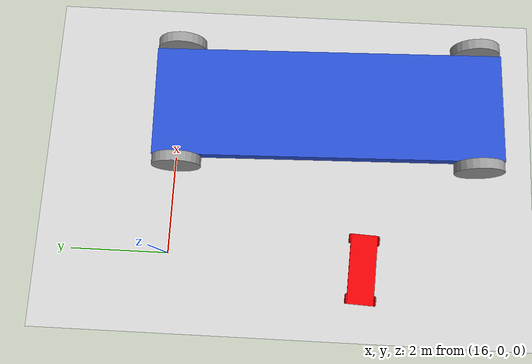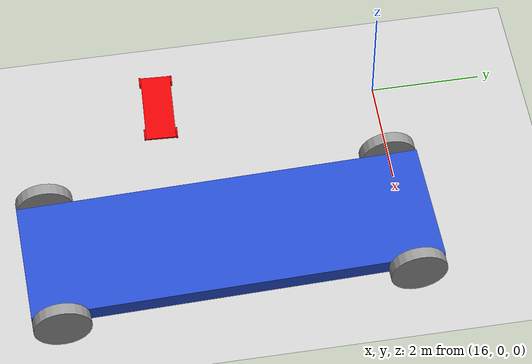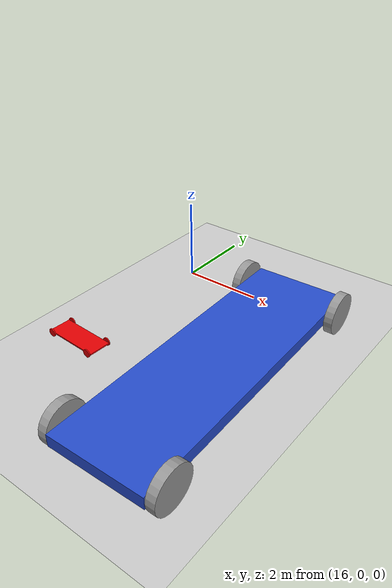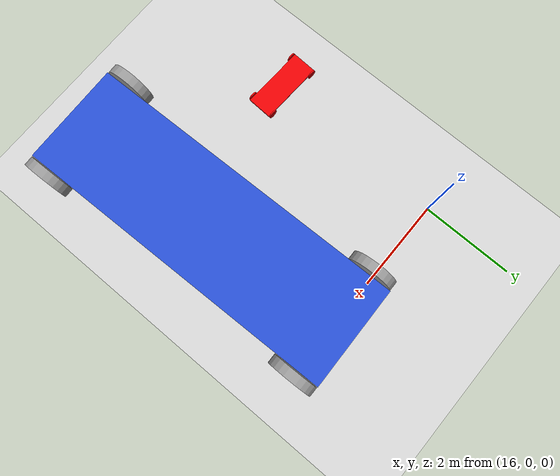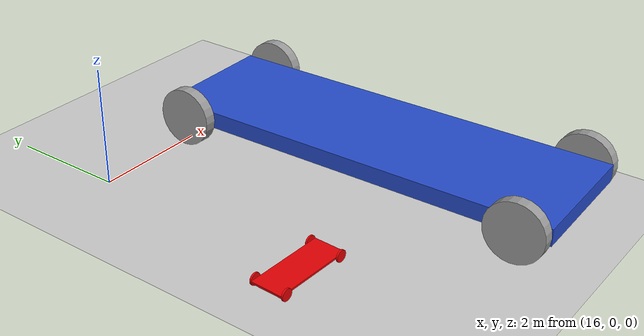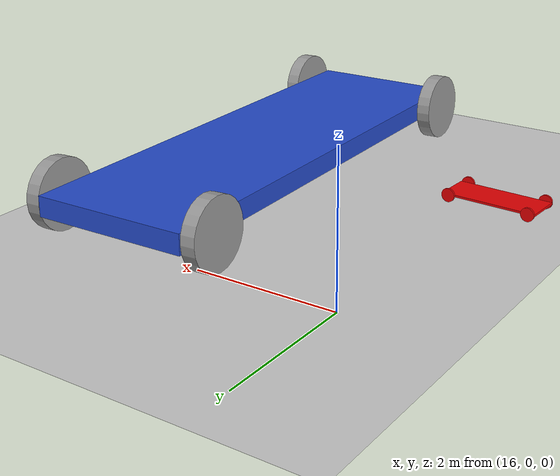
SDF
<sdf version="1.6">
 <world name="default">
  <model name="ground_plane">
   <static>1</static>
   <link name="link">
    <collision name="collision">
     <geometry><plane><normal>0 0 1</normal><size>100 100</size></plane></geometry>
     <surface><friction><ode><mu>100</mu><mu2>50</mu2></ode></friction></surface>
    </collision>
    <visual name="visual">
     <cast_shadows>0</cast_shadows>
     <geometry><plane><normal>0 0 1</normal><size>100 100</size></plane></geometry>
     <material>
      <script><uri>file://media/materials/scripts/gazebo.material</uri><name>Gazebo/Grey</name></script>
     </material>
    </visual>
   </link>
  </model>
  <model name="big_cart_0">
   <link name="link_0">
    <inertial>
     <mass>4.6866</mass>
     <inertia><ixx>2.0216</ixx><ixy>0</ixy><ixz>0</ixz><iyy>20.0752</iyy><iyz>0</iyz><izz>22.0311</izz></inertia>
    </inertial>
    <visual name="visual">
     <geometry><box><size>7.16364 2.25661 0.28988</size></box></geometry>
     <material>
      <lighting>1</lighting>
      <script><uri>file://media/materials/scripts/gazebo.material</uri><name>Gazebo/Blue</name></script>
      <ambient>0.9 0.002 0 1</ambient>
      <diffuse>0.9 0.002 0.01 0.9</diffuse>
      <specular>0.01 0.01 0.01 1</specular>
      <emissive>0 0 0 1</emissive>
      <shader type="vertex"><normal_map>__default__</normal_map></shader>
     </material>
    </visual>
    <visual name="ModelPreview_0::link_0::visual_1">
     <geometry><box><size>7.16364 2.25661 0.28988</size></box></geometry>
     <material>
      <lighting>1</lighting>
      <script><uri>file://media/materials/scripts/gazebo.material</uri><name>Gazebo/Blue</name></script>
      <ambient>0.09 0.09 0.6 0.7</ambient>
      <diffuse>0.9 0.9 0.9 0.9</diffuse>
      <specular>0.01 0.01 0.01 1</specular>
      <emissive>0 0 0 1</emissive>
      <shader type="vertex"><normal_map>__default__</normal_map></shader>
     </material>
    </visual>
    <collision name="collision">
     <geometry><box><size>7.16364 2.25661 0.28988</size></box></geometry>
     <surface>
      <friction>
       <ode><mu>1</mu><mu2>1</mu2><fdir1>0 0 0</fdir1><slip1>0</slip1><slip2>0</slip2></ode>
       <torsional>
        <coefficient>1</coefficient>
        <patch_radius>0</patch_radius>
        <surface_radius>0</surface_radius>
        <use_patch_radius>1</use_patch_radius>
        <ode><slip>0</slip></ode>
       </torsional>
      </friction>
      <bounce><restitution_coefficient>0</restitution_coefficient><threshold>1e+06</threshold></bounce>
      <contact>
       <collide_without_contact>0</collide_without_contact>
       <collide_without_contact_bitmask>1</collide_without_contact_bitmask>
       <collide_bitmask>1</collide_bitmask>
       <ode>
        <soft_cfm>0</soft_cfm>
        <soft_erp>0.2</soft_erp>
        <kp>1e+13</kp>
        <kd>1</kd>
        <max_vel>0.01</max_vel>
        <min_depth>0</min_depth>
       </ode>
       <bullet>
        <split_impulse>1</split_impulse>
        <split_impulse_penetration_threshold>-0.01</split_impulse_penetration_threshold>
        <soft_cfm>0</soft_cfm>
        <soft_erp>0.2</soft_erp>
        <kp>1e+13</kp>
        <kd>1</kd>
       </bullet>
      </contact>
     </surface>
    </collision>
   </link>
   <link name="link_1_clone_clone_clone">
    <pose>-3.08182 1.24423 0 -1.59621 0 0</pose>
    <inertial>
     <mass>0.206504</mass>
     <inertia>
      <ixx>0.0136404</ixx>
      <ixy>0</ixy>
      <ixz>0</ixz>
      <iyy>0.0136404</iyy>
      <iyz>0</iyz>
      <izz>0.0258131</izz>
     </inertia>
    </inertial>
    <visual name="visual">
     <geometry><cylinder><radius>0.5</radius><length>0.206502</length></cylinder></geometry>
     <material>
      <lighting>1</lighting>
      <script><uri>file://media/materials/scripts/gazebo.material</uri><name>Gazebo/Grey</name></script>
      <ambient>0.5 0.5 0.5 1</ambient>
      <diffuse>0.9 0.9 0.9 1</diffuse>
      <specular>0.01 0.01 0.01 1</specular>
      <emissive>0 0 0 1</emissive>
      <shader type="vertex"><normal_map>__default__</normal_map></shader>
     </material>
    </visual>
    <collision name="collision">
     <geometry><cylinder><radius>0.5</radius><length>0.206502</length></cylinder></geometry>
     <surface>
      <friction>
       <ode><mu>1</mu><mu2>1</mu2><fdir1>0 0 0</fdir1><slip1>0</slip1><slip2>0</slip2></ode>
       <torsional>
        <coefficient>1</coefficient>
        <patch_radius>0</patch_radius>
        <surface_radius>0</surface_radius>
        <use_patch_radius>1</use_patch_radius>
        <ode><slip>0</slip></ode>
       </torsional>
      </friction>
      <bounce><restitution_coefficient>0</restitution_coefficient><threshold>1e+06</threshold></bounce>
      <contact>
       <collide_without_contact>0</collide_without_contact>
       <collide_without_contact_bitmask>1</collide_without_contact_bitmask>
       <collide_bitmask>1</collide_bitmask>
       <ode>
        <soft_cfm>0</soft_cfm>
        <soft_erp>0.2</soft_erp>
        <kp>1e+13</kp>
        <kd>1</kd>
        <max_vel>0.01</max_vel>
        <min_depth>0</min_depth>
       </ode>
       <bullet>
        <split_impulse>1</split_impulse>
        <split_impulse_penetration_threshold>-0.01</split_impulse_penetration_threshold>
        <soft_cfm>0</soft_cfm>
        <soft_erp>0.2</soft_erp>
        <kp>1e+13</kp>
        <kd>1</kd>
       </bullet>
      </contact>
     </surface>
    </collision>
   </link>
   <link name="link_1_clone_clone_clone_1">
    <pose>3.08182 -1.24423 0 -1.59621 0 0</pose>
    <inertial>
     <mass>0.206504</mass>
     <inertia>
      <ixx>0.0136404</ixx>
      <ixy>0</ixy>
      <ixz>0</ixz>
      <iyy>0.0136404</iyy>
      <iyz>0</iyz>
      <izz>0.0258131</izz>
     </inertia>
    </inertial>
    <visual name="visual">
     <geometry><cylinder><radius>0.5</radius><length>0.206502</length></cylinder></geometry>
     <material>
      <lighting>1</lighting>
      <script><uri>file://media/materials/scripts/gazebo.material</uri><name>Gazebo/Grey</name></script>
      <ambient>0.5 0.5 0.5 1</ambient>
      <diffuse>0.9 0.9 0.9 1</diffuse>
      <specular>0.01 0.01 0.01 1</specular>
      <emissive>0 0 0 1</emissive>
      <shader type="vertex"><normal_map>__default__</normal_map></shader>
     </material>
    </visual>
    <collision name="collision">
     <geometry><cylinder><radius>0.5</radius><length>0.206502</length></cylinder></geometry>
     <surface>
      <friction>
       <ode><mu>1</mu><mu2>1</mu2><fdir1>0 0 0</fdir1><slip1>0</slip1><slip2>0</slip2></ode>
       <torsional>
        <coefficient>1</coefficient>
        <patch_radius>0</patch_radius>
        <surface_radius>0</surface_radius>
        <use_patch_radius>1</use_patch_radius>
        <ode><slip>0</slip></ode>
       </torsional>
      </friction>
      <bounce><restitution_coefficient>0</restitution_coefficient><threshold>1e+06</threshold></bounce>
      <contact>
       <collide_without_contact>0</collide_without_contact>
       <collide_without_contact_bitmask>1</collide_without_contact_bitmask>
       <collide_bitmask>1</collide_bitmask>
       <ode>
        <soft_cfm>0</soft_cfm>
        <soft_erp>0.2</soft_erp>
        <kp>1e+13</kp>
        <kd>1</kd>
        <max_vel>0.01</max_vel>
        <min_depth>0</min_depth>
       </ode>
       <bullet>
        <split_impulse>1</split_impulse>
        <split_impulse_penetration_threshold>-0.01</split_impulse_penetration_threshold>
        <soft_cfm>0</soft_cfm>
        <soft_erp>0.2</soft_erp>
        <kp>1e+13</kp>
        <kd>1</kd>
       </bullet>
      </contact>
     </surface>
    </collision>
   </link>
   <link name="link_1_clone_clone_clone_1_clone">
    <pose>3.08182 1.24423 0 -1.59621 0 0</pose>
    <inertial>
     <mass>0.206504</mass>
     <inertia>
      <ixx>0.0136404</ixx>
      <ixy>0</ixy>
      <ixz>0</ixz>
      <iyy>0.0136404</iyy>
      <iyz>0</iyz>
      <izz>0.0258131</izz>
     </inertia>
    </inertial>
    <visual name="visual">
     <geometry><cylinder><radius>0.5</radius><length>0.206502</length></cylinder></geometry>
     <material>
      <lighting>1</lighting>
      <script><uri>file://media/materials/scripts/gazebo.material</uri><name>Gazebo/Grey</name></script>
      <ambient>0.5 0.5 0.5 1</ambient>
      <diffuse>0.9 0.9 0.9 1</diffuse>
      <specular>0.01 0.01 0.01 1</specular>
      <emissive>0 0 0 1</emissive>
      <shader type="vertex"><normal_map>__default__</normal_map></shader>
     </material>
    </visual>
    <collision name="collision">
     <geometry><cylinder><radius>0.5</radius><length>0.206502</length></cylinder></geometry>
     <surface>
      <friction>
       <ode><mu>1</mu><mu2>1</mu2><fdir1>0 0 0</fdir1><slip1>0</slip1><slip2>0</slip2></ode>
       <torsional>
        <coefficient>1</coefficient>
        <patch_radius>0</patch_radius>
        <surface_radius>0</surface_radius>
        <use_patch_radius>1</use_patch_radius>
        <ode><slip>0</slip></ode>
       </torsional>
      </friction>
      <bounce><restitution_coefficient>0</restitution_coefficient><threshold>1e+06</threshold></bounce>
      <contact>
       <collide_without_contact>0</collide_without_contact>
       <collide_without_contact_bitmask>1</collide_without_contact_bitmask>
       <collide_bitmask>1</collide_bitmask>
       <ode>
        <soft_cfm>0</soft_cfm>
        <soft_erp>0.2</soft_erp>
        <kp>1e+13</kp>
        <kd>1</kd>
        <max_vel>0.01</max_vel>
        <min_depth>0</min_depth>
       </ode>
       <bullet>
        <split_impulse>1</split_impulse>
        <split_impulse_penetration_threshold>-0.01</split_impulse_penetration_threshold>
        <soft_cfm>0</soft_cfm>
        <soft_erp>0.2</soft_erp>
        <kp>1e+13</kp>
        <kd>1</kd>
       </bullet>
      </contact>
     </surface>
    </collision>
   </link>
   <link name="link_1_clone_clone_clone_clone">
    <pose>-3.08182 -1.24423 0 -1.59621 0 0</pose>
    <inertial>
     <mass>0.206504</mass>
     <inertia>
      <ixx>0.0136404</ixx>
      <ixy>0</ixy>
      <ixz>0</ixz>
      <iyy>0.0136404</iyy>
      <iyz>0</iyz>
      <izz>0.0258131</izz>
     </inertia>
    </inertial>
    <visual name="visual">
     <geometry><cylinder><radius>0.5</radius><length>0.206502</length></cylinder></geometry>
     <material>
      <lighting>1</lighting>
      <script><uri>file://media/materials/scripts/gazebo.material</uri><name>Gazebo/Grey</name></script>
      <ambient>0.5 0.5 0.5 1</ambient>
      <diffuse>0.9 0.9 0.9 1</diffuse>
      <specular>0.01 0.01 0.01 1</specular>
      <emissive>0 0 0 1</emissive>
      <shader type="vertex"><normal_map>__default__</normal_map></shader>
     </material>
    </visual>
    <collision name="collision">
     <geometry><cylinder><radius>0.5</radius><length>0.206502</length></cylinder></geometry>
     <surface>
      <friction>
       <ode><mu>1</mu><mu2>1</mu2><fdir1>0 0 0</fdir1><slip1>0</slip1><slip2>0</slip2></ode>
       <torsional>
        <coefficient>1</coefficient>
        <patch_radius>0</patch_radius>
        <surface_radius>0</surface_radius>
        <use_patch_radius>1</use_patch_radius>
        <ode><slip>0</slip></ode>
       </torsional>
      </friction>
      <bounce><restitution_coefficient>0</restitution_coefficient><threshold>1e+06</threshold></bounce>
      <contact>
       <collide_without_contact>0</collide_without_contact>
       <collide_without_contact_bitmask>1</collide_without_contact_bitmask>
       <collide_bitmask>1</collide_bitmask>
       <ode>
        <soft_cfm>0</soft_cfm>
        <soft_erp>0.2</soft_erp>
        <kp>1e+13</kp>
        <kd>1</kd>
        <max_vel>0.01</max_vel>
        <min_depth>0</min_depth>
       </ode>
       <bullet>
        <split_impulse>1</split_impulse>
        <split_impulse_penetration_threshold>-0.01</split_impulse_penetration_threshold>
        <soft_cfm>0</soft_cfm>
        <soft_erp>0.2</soft_erp>
        <kp>1e+13</kp>
        <kd>1</kd>
       </bullet>
      </contact>
     </surface>
    </collision>
   </link>
   <joint name="link_0_JOINT_4" type="revolute">
    <parent>link_0</parent>
    <child>link_1_clone_clone_clone</child>
    <axis>
     <xyz>0 0 1</xyz>
     <use_parent_model_frame>0</use_parent_model_frame>
     <limit>
      <lower>-1.79769e+308</lower>
      <upper>1.79769e+308</upper>
      <effort>-1</effort>
      <velocity>-1</velocity>
     </limit>
     <dynamics>
      <spring_reference>0</spring_reference>
      <spring_stiffness>0</spring_stiffness>
      <damping>0</damping>
     </dynamics>
    </axis>
    <physics>
     <ode><limit><cfm>0</cfm><erp>0.2</erp></limit><suspension><cfm>0</cfm><erp>0.2</erp></suspension></ode>
    </physics>
   </joint>
   <joint name="link_0_JOINT_6" type="revolute">
    <parent>link_0</parent>
    <child>link_1_clone_clone_clone_1</child>
    <axis>
     <xyz>0 0 1</xyz>
     <use_parent_model_frame>0</use_parent_model_frame>
     <limit>
      <lower>-1.79769e+308</lower>
      <upper>1.79769e+308</upper>
      <effort>-1</effort>
      <velocity>-1</velocity>
     </limit>
     <dynamics>
      <spring_reference>0</spring_reference>
      <spring_stiffness>0</spring_stiffness>
      <damping>0</damping>
     </dynamics>
    </axis>
    <physics>
     <ode><limit><cfm>0</cfm><erp>0.2</erp></limit><suspension><cfm>0</cfm><erp>0.2</erp></suspension></ode>
    </physics>
   </joint>
   <joint name="link_0_JOINT_7" type="revolute">
    <parent>link_0</parent>
    <child>link_1_clone_clone_clone_1_clone</child>
    <axis>
     <xyz>0 0 1</xyz>
     <use_parent_model_frame>0</use_parent_model_frame>
     <limit>
      <lower>-1.79769e+308</lower>
      <upper>1.79769e+308</upper>
      <effort>-1</effort>
      <velocity>-1</velocity>
     </limit>
     <dynamics>
      <spring_reference>0</spring_reference>
      <spring_stiffness>0</spring_stiffness>
      <damping>0</damping>
     </dynamics>
    </axis>
    <physics>
     <ode><limit><cfm>0</cfm><erp>0.2</erp></limit><suspension><cfm>0</cfm><erp>0.2</erp></suspension></ode>
    </physics>
   </joint>
   <joint name="link_0_JOINT_8" type="revolute">
    <parent>link_0</parent>
    <child>link_1_clone_clone_clone_clone</child>
    <axis>
     <xyz>0 0 1</xyz>
     <use_parent_model_frame>0</use_parent_model_frame>
     <limit>
      <lower>-1.79769e+308</lower>
      <upper>1.79769e+308</upper>
      <effort>-1</effort>
      <velocity>-1</velocity>
     </limit>
     <dynamics>
      <spring_reference>0</spring_reference>
      <spring_stiffness>0</spring_stiffness>
      <damping>0</damping>
     </dynamics>
    </axis>
    <physics>
     <ode><limit><cfm>0</cfm><erp>0.2</erp></limit><suspension><cfm>0</cfm><erp>0.2</erp></suspension></ode>
    </physics>
   </joint>
   <static>0</static>
   <pose>19.1572 -3.14724 0.502458 -3e-06 -0 -1.54506</pose>
  </model>
  <model name="cart_1">
   <link name="link_0">
    <pose>0.002043 -1e-06 0 0 -0 0</pose>
    <inertial>
     <mass>0.0253075</mass>
     <inertia>
      <ixx>0.00062948</ixx>
      <ixy>0</ixy>
      <ixz>0</ixz>
      <iyy>0.00421325</iyy>
      <iyz>0</iyz>
      <izz>0.00483818</izz>
     </inertia>
    </inertial>
    <visual name="visual">
     <geometry><box><size>1.41306 0.545344 0.032853</size></box></geometry>
     <material>
      <lighting>1</lighting>
      <script><uri>file://media/materials/scripts/gazebo.material</uri><name>Gazebo/Grey</name></script>
      <ambient>0.9 0.002 0 1</ambient>
      <diffuse>0.9 0.002 0.01 0.9</diffuse>
      <specular>0.01 0.01 0.01 1</specular>
      <emissive>0 0 0 1</emissive>
      <shader type="vertex"><normal_map>__default__</normal_map></shader>
     </material>
    </visual>
    <collision name="collision">
     <geometry><box><size>1.41306 0.545344 0.032853</size></box></geometry>
     <surface>
      <friction>
       <ode><mu>1</mu><mu2>1</mu2><fdir1>0 0 0</fdir1><slip1>0</slip1><slip2>0</slip2></ode>
       <torsional>
        <coefficient>1</coefficient>
        <patch_radius>0</patch_radius>
        <surface_radius>0</surface_radius>
        <use_patch_radius>1</use_patch_radius>
        <ode><slip>0</slip></ode>
       </torsional>
      </friction>
      <bounce><restitution_coefficient>0</restitution_coefficient><threshold>1e+06</threshold></bounce>
      <contact>
       <collide_without_contact>0</collide_without_contact>
       <collide_without_contact_bitmask>1</collide_without_contact_bitmask>
       <collide_bitmask>1</collide_bitmask>
       <ode>
        <soft_cfm>0</soft_cfm>
        <soft_erp>0.2</soft_erp>
        <kp>1e+13</kp>
        <kd>1</kd>
        <max_vel>0.01</max_vel>
        <min_depth>0</min_depth>
       </ode>
       <bullet>
        <split_impulse>1</split_impulse>
        <split_impulse_penetration_threshold>-0.01</split_impulse_penetration_threshold>
        <soft_cfm>0</soft_cfm>
        <soft_erp>0.2</soft_erp>
        <kp>1e+13</kp>
        <kd>1</kd>
       </bullet>
      </contact>
     </surface>
    </collision>
   </link>
   <link name="link_1">
    <pose>0.598738 -0.289052 0 -1.55276 0 0</pose>
    <inertial>
     <mass>0.00115815</mass>
     <inertia>
      <ixx>2.95396e-06</ixx>
      <ixy>0</ixy>
      <ixz>0</ixz>
      <iyy>2.95396e-06</iyy>
      <iyz>0</iyz>
      <izz>5.7496e-06</izz>
     </inertia>
    </inertial>
    <visual name="visual">
     <geometry><cylinder><radius>0.0996172</radius><length>0.0291706</length></cylinder></geometry>
     <material>
      <lighting>1</lighting>
      <script><uri>file://media/materials/scripts/gazebo.material</uri><name>Gazebo/Grey</name></script>
      <ambient>0.9 0.002 0 1</ambient>
      <diffuse>0.9 0.002 0.01 0.9</diffuse>
      <specular>0.01 0.01 0.01 1</specular>
      <emissive>0 0 0 1</emissive>
      <shader type="vertex"><normal_map>__default__</normal_map></shader>
     </material>
    </visual>
    <collision name="collision">
     <geometry><cylinder><radius>0.099617</radius><length>0.029171</length></cylinder></geometry>
     <surface>
      <friction>
       <ode><mu>1</mu><mu2>1</mu2><fdir1>0 0 0</fdir1><slip1>0</slip1><slip2>0</slip2></ode>
       <torsional>
        <coefficient>1</coefficient>
        <patch_radius>0</patch_radius>
        <surface_radius>0</surface_radius>
        <use_patch_radius>1</use_patch_radius>
        <ode><slip>0</slip></ode>
       </torsional>
      </friction>
      <bounce><restitution_coefficient>0</restitution_coefficient><threshold>1e+06</threshold></bounce>
      <contact>
       <collide_without_contact>0</collide_without_contact>
       <collide_without_contact_bitmask>1</collide_without_contact_bitmask>
       <collide_bitmask>1</collide_bitmask>
       <ode>
        <soft_cfm>0</soft_cfm>
        <soft_erp>0.2</soft_erp>
        <kp>1e+13</kp>
        <kd>1</kd>
        <max_vel>0.01</max_vel>
        <min_depth>0</min_depth>
       </ode>
       <bullet>
        <split_impulse>1</split_impulse>
        <split_impulse_penetration_threshold>-0.01</split_impulse_penetration_threshold>
        <soft_cfm>0</soft_cfm>
        <soft_erp>0.2</soft_erp>
        <kp>1e+13</kp>
        <kd>1</kd>
       </bullet>
      </contact>
     </surface>
    </collision>
   </link>
   <link name="link_1_clone">
    <pose>-0.604867 0.289051 0 -1.55276 0 0</pose>
    <inertial>
     <mass>0.00115815</mass>
     <inertia>
      <ixx>2.95396e-06</ixx>
      <ixy>0</ixy>
      <ixz>0</ixz>
      <iyy>2.95396e-06</iyy>
      <iyz>0</iyz>
      <izz>5.7496e-06</izz>
     </inertia>
    </inertial>
    <visual name="visual">
     <geometry><cylinder><radius>0.0996172</radius><length>0.0291706</length></cylinder></geometry>
     <material>
      <lighting>1</lighting>
      <script><uri>file://media/materials/scripts/gazebo.material</uri><name>Gazebo/Grey</name></script>
      <ambient>0.9 0.002 0 1</ambient>
      <diffuse>0.9 0.002 0.01 0.9</diffuse>
      <specular>0.01 0.01 0.01 1</specular>
      <emissive>0 0 0 1</emissive>
      <shader type="vertex"><normal_map>__default__</normal_map></shader>
     </material>
    </visual>
    <collision name="collision">
     <geometry><cylinder><radius>0.099617</radius><length>0.029171</length></cylinder></geometry>
     <surface>
      <friction>
       <ode><mu>1</mu><mu2>1</mu2><fdir1>0 0 0</fdir1><slip1>0</slip1><slip2>0</slip2></ode>
       <torsional>
        <coefficient>1</coefficient>
        <patch_radius>0</patch_radius>
        <surface_radius>0</surface_radius>
        <use_patch_radius>1</use_patch_radius>
        <ode><slip>0</slip></ode>
       </torsional>
      </friction>
      <bounce><restitution_coefficient>0</restitution_coefficient><threshold>1e+06</threshold></bounce>
      <contact>
       <collide_without_contact>0</collide_without_contact>
       <collide_without_contact_bitmask>1</collide_without_contact_bitmask>
       <collide_bitmask>1</collide_bitmask>
       <ode>
        <soft_cfm>0</soft_cfm>
        <soft_erp>0.2</soft_erp>
        <kp>1e+13</kp>
        <kd>1</kd>
        <max_vel>0.01</max_vel>
        <min_depth>0</min_depth>
       </ode>
       <bullet>
        <split_impulse>1</split_impulse>
        <split_impulse_penetration_threshold>-0.01</split_impulse_penetration_threshold>
        <soft_cfm>0</soft_cfm>
        <soft_erp>0.2</soft_erp>
        <kp>1e+13</kp>
        <kd>1</kd>
       </bullet>
      </contact>
     </surface>
    </collision>
   </link>
   <link name="link_1_clone_0">
    <pose>-0.604867 -0.289052 0 -1.55276 0 0</pose>
    <inertial>
     <mass>0.00115815</mass>
     <inertia>
      <ixx>2.95396e-06</ixx>
      <ixy>0</ixy>
      <ixz>0</ixz>
      <iyy>2.95396e-06</iyy>
      <iyz>0</iyz>
      <izz>5.7496e-06</izz>
     </inertia>
    </inertial>
    <visual name="visual">
     <geometry><cylinder><radius>0.0996172</radius><length>0.0291706</length></cylinder></geometry>
     <material>
      <lighting>1</lighting>
      <script><uri>file://media/materials/scripts/gazebo.material</uri><name>Gazebo/Grey</name></script>
      <ambient>0.9 0.002 0 1</ambient>
      <diffuse>0.9 0.002 0.01 0.9</diffuse>
      <specular>0.01 0.01 0.01 1</specular>
      <emissive>0 0 0 1</emissive>
      <shader type="vertex"><normal_map>__default__</normal_map></shader>
     </material>
    </visual>
    <collision name="collision">
     <geometry><cylinder><radius>0.099617</radius><length>0.029171</length></cylinder></geometry>
     <surface>
      <friction>
       <ode><mu>1</mu><mu2>1</mu2><fdir1>0 0 0</fdir1><slip1>0</slip1><slip2>0</slip2></ode>
       <torsional>
        <coefficient>1</coefficient>
        <patch_radius>0</patch_radius>
        <surface_radius>0</surface_radius>
        <use_patch_radius>1</use_patch_radius>
        <ode><slip>0</slip></ode>
       </torsional>
      </friction>
      <bounce><restitution_coefficient>0</restitution_coefficient><threshold>1e+06</threshold></bounce>
      <contact>
       <collide_without_contact>0</collide_without_contact>
       <collide_without_contact_bitmask>1</collide_without_contact_bitmask>
       <collide_bitmask>1</collide_bitmask>
       <ode>
        <soft_cfm>0</soft_cfm>
        <soft_erp>0.2</soft_erp>
        <kp>1e+13</kp>
        <kd>1</kd>
        <max_vel>0.01</max_vel>
        <min_depth>0</min_depth>
       </ode>
       <bullet>
        <split_impulse>1</split_impulse>
        <split_impulse_penetration_threshold>-0.01</split_impulse_penetration_threshold>
        <soft_cfm>0</soft_cfm>
        <soft_erp>0.2</soft_erp>
        <kp>1e+13</kp>
        <kd>1</kd>
       </bullet>
      </contact>
     </surface>
    </collision>
   </link>
   <link name="link_1_clone_1">
    <pose>0.608953 0.289051 0 -1.55276 0 0</pose>
    <inertial>
     <mass>0.00115815</mass>
     <inertia>
      <ixx>2.95396e-06</ixx>
      <ixy>0</ixy>
      <ixz>0</ixz>
      <iyy>2.95396e-06</iyy>
      <iyz>0</iyz>
      <izz>5.7496e-06</izz>
     </inertia>
    </inertial>
    <visual name="visual">
     <geometry><cylinder><radius>0.0996172</radius><length>0.0291706</length></cylinder></geometry>
     <material>
      <lighting>1</lighting>
      <script><uri>file://media/materials/scripts/gazebo.material</uri><name>Gazebo/Grey</name></script>
      <ambient>0.9 0.002 0 1</ambient>
      <diffuse>0.9 0.002 0.01 0.9</diffuse>
      <specular>0.01 0.01 0.01 1</specular>
      <emissive>0 0 0 1</emissive>
      <shader type="vertex"><normal_map>__default__</normal_map></shader>
     </material>
    </visual>
    <collision name="collision">
     <geometry><cylinder><radius>0.099617</radius><length>0.029171</length></cylinder></geometry>
     <surface>
      <friction>
       <ode><mu>1</mu><mu2>1</mu2><fdir1>0 0 0</fdir1><slip1>0</slip1><slip2>0</slip2></ode>
       <torsional>
        <coefficient>1</coefficient>
        <patch_radius>0</patch_radius>
        <surface_radius>0</surface_radius>
        <use_patch_radius>1</use_patch_radius>
        <ode><slip>0</slip></ode>
       </torsional>
      </friction>
      <bounce><restitution_coefficient>0</restitution_coefficient><threshold>1e+06</threshold></bounce>
      <contact>
       <collide_without_contact>0</collide_without_contact>
       <collide_without_contact_bitmask>1</collide_without_contact_bitmask>
       <collide_bitmask>1</collide_bitmask>
       <ode>
        <soft_cfm>0</soft_cfm>
        <soft_erp>0.2</soft_erp>
        <kp>1e+13</kp>
        <kd>1</kd>
        <max_vel>0.01</max_vel>
        <min_depth>0</min_depth>
       </ode>
       <bullet>
        <split_impulse>1</split_impulse>
        <split_impulse_penetration_threshold>-0.01</split_impulse_penetration_threshold>
        <soft_cfm>0</soft_cfm>
        <soft_erp>0.2</soft_erp>
        <kp>1e+13</kp>
        <kd>1</kd>
       </bullet>
      </contact>
     </surface>
    </collision>
   </link>
   <joint name="link_0_JOINT_0" type="revolute">
    <parent>link_0</parent>
    <child>link_1</child>
    <axis>
     <xyz>0 0 1</xyz>
     <use_parent_model_frame>0</use_parent_model_frame>
     <limit>
      <lower>-1.79769e+308</lower>
      <upper>1.79769e+308</upper>
      <effort>-1</effort>
      <velocity>-1</velocity>
     </limit>
     <dynamics>
      <spring_reference>0</spring_reference>
      <spring_stiffness>0</spring_stiffness>
      <damping>0</damping>
     </dynamics>
    </axis>
    <physics>
     <ode><limit><cfm>0</cfm><erp>0.2</erp></limit><suspension><cfm>0</cfm><erp>0.2</erp></suspension></ode>
    </physics>
   </joint>
   <joint name="link_0_JOINT_1" type="revolute">
    <parent>link_0</parent>
    <child>link_1_clone_1</child>
    <axis>
     <xyz>0 0 1</xyz>
     <use_parent_model_frame>0</use_parent_model_frame>
     <limit>
      <lower>-1.79769e+308</lower>
      <upper>1.79769e+308</upper>
      <effort>-1</effort>
      <velocity>-1</velocity>
     </limit>
     <dynamics>
      <spring_reference>0</spring_reference>
      <spring_stiffness>0</spring_stiffness>
      <damping>0</damping>
     </dynamics>
    </axis>
    <physics>
     <ode><limit><cfm>0</cfm><erp>0.2</erp></limit><suspension><cfm>0</cfm><erp>0.2</erp></suspension></ode>
    </physics>
   </joint>
   <joint name="link_0_JOINT_2" type="revolute">
    <parent>link_0</parent>
    <child>link_1_clone_0</child>
    <axis>
     <xyz>0 0 1</xyz>
     <use_parent_model_frame>0</use_parent_model_frame>
     <limit>
      <lower>-1.79769e+308</lower>
      <upper>1.79769e+308</upper>
      <effort>-1</effort>
      <velocity>-1</velocity>
     </limit>
     <dynamics>
      <spring_reference>0</spring_reference>
      <spring_stiffness>0</spring_stiffness>
      <damping>0</damping>
     </dynamics>
    </axis>
    <physics>
     <ode><limit><cfm>0</cfm><erp>0.2</erp></limit><suspension><cfm>0</cfm><erp>0.2</erp></suspension></ode>
    </physics>
   </joint>
   <joint name="link_0_JOINT_3" type="revolute">
    <parent>link_0</parent>
    <child>link_1_clone</child>
    <axis>
     <xyz>0 0 1</xyz>
     <use_parent_model_frame>0</use_parent_model_frame>
     <limit>
      <lower>-1.79769e+308</lower>
      <upper>1.79769e+308</upper>
      <effort>-1</effort>
      <velocity>-1</velocity>
     </limit>
     <dynamics>
      <spring_reference>0</spring_reference>
      <spring_stiffness>0</spring_stiffness>
      <damping>0</damping>
     </dynamics>
    </axis>
    <physics>
     <ode><limit><cfm>0</cfm><erp>0.2</erp></limit><suspension><cfm>0</cfm><erp>0.2</erp></suspension></ode>
    </physics>
   </joint>
   <static>0</static>
   <pose>15.8608 -3.98737 0.099863 -1e-06 -0 -0.045651</pose>
  </model>
 </world>
</sdf>
